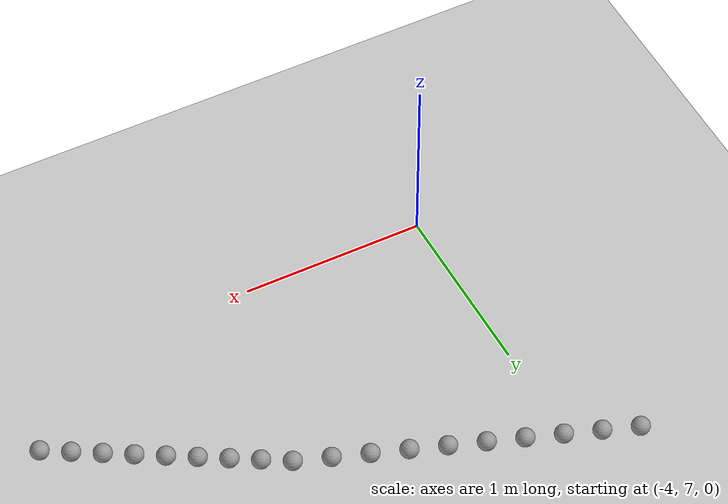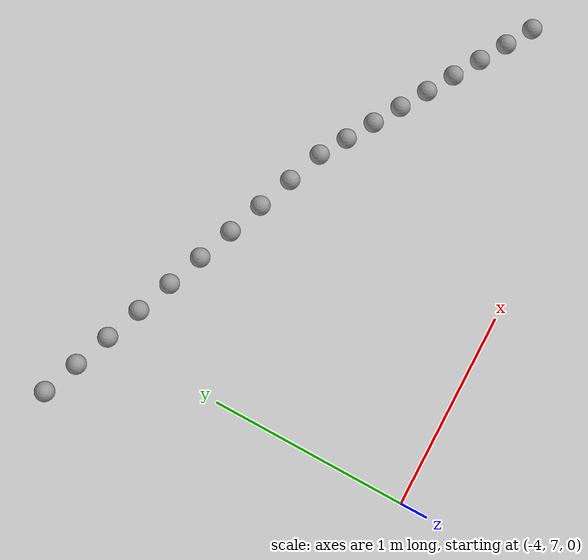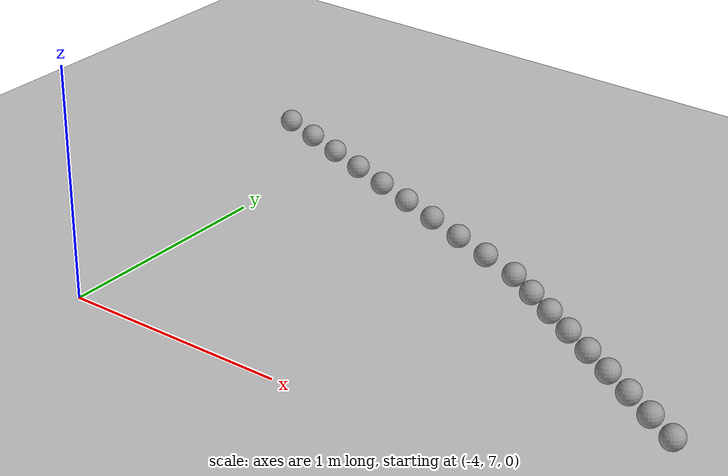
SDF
<sdf version="1.6">
 <world name="default">
  <model name="ground_plane">
   <static>1</static>
   <link name="link">
    <collision name="collision">
     <geometry><plane><normal>0 0 1</normal><size>100 100</size></plane></geometry>
     <surface><friction><ode><mu>100</mu><mu2>50</mu2></ode></friction></surface>
    </collision>
    <visual name="visual">
     <cast_shadows>0</cast_shadows>
     <geometry><plane><normal>0 0 1</normal><size>100 100</size></plane></geometry>
     <material>
      <script><uri>file://media/materials/scripts/gazebo.material</uri><name>Gazebo/Grey</name></script>
     </material>
    </visual>
   </link>
  </model>
  <model name="unit_sphere_0_42">
   <pose>-1.594000 7.500000 0.050000 0 -0 0</pose>
   <link name="link">
    <inertial>
     <mass>1</mass>
     <inertia><ixx>0.1</ixx><ixy>0</ixy><ixz>0</ixz><iyy>0.1</iyy><iyz>0</iyz><izz>0.1</izz></inertia>
    </inertial>
    <collision name="collision"><geometry><sphere><radius>0.050000</radius></sphere></geometry></collision>
    <visual name="visual">
     <geometry><sphere><radius>0.050000</radius></sphere></geometry>
     <material>
      <script><name>Gazebo/Grey</name><uri>file://media/materials/scripts/gazebo.material</uri></script>
     </material>
    </visual>
   </link>
  </model>
  <model name="unit_sphere_0_43">
   <pose>-1.731000 7.580000 0.050000 0 -0 0</pose>
   <link name="link">
    <inertial>
     <mass>1</mass>
     <inertia><ixx>0.1</ixx><ixy>0</ixy><ixz>0</ixz><iyy>0.1</iyy><iyz>0</iyz><izz>0.1</izz></inertia>
    </inertial>
    <collision name="collision"><geometry><sphere><radius>0.050000</radius></sphere></geometry></collision>
    <visual name="visual">
     <geometry><sphere><radius>0.050000</radius></sphere></geometry>
     <material>
      <script><name>Gazebo/Grey</name><uri>file://media/materials/scripts/gazebo.material</uri></script>
     </material>
    </visual>
   </link>
  </model>
  <model name="unit_sphere_0_44">
   <pose>-1.868000 7.660000 0.050000 0 -0 0</pose>
   <link name="link">
    <inertial>
     <mass>1</mass>
     <inertia><ixx>0.1</ixx><ixy>0</ixy><ixz>0</ixz><iyy>0.1</iyy><iyz>0</iyz><izz>0.1</izz></inertia>
    </inertial>
    <collision name="collision"><geometry><sphere><radius>0.050000</radius></sphere></geometry></collision>
    <visual name="visual">
     <geometry><sphere><radius>0.050000</radius></sphere></geometry>
     <material>
      <script><name>Gazebo/Grey</name><uri>file://media/materials/scripts/gazebo.material</uri></script>
     </material>
    </visual>
   </link>
  </model>
  <model name="unit_sphere_0_45">
   <pose>-2.005000 7.740000 0.050000 0 -0 0</pose>
   <link name="link">
    <inertial>
     <mass>1</mass>
     <inertia><ixx>0.1</ixx><ixy>0</ixy><ixz>0</ixz><iyy>0.1</iyy><iyz>0</iyz><izz>0.1</izz></inertia>
    </inertial>
    <collision name="collision"><geometry><sphere><radius>0.050000</radius></sphere></geometry></collision>
    <visual name="visual">
     <geometry><sphere><radius>0.050000</radius></sphere></geometry>
     <material>
      <script><name>Gazebo/Grey</name><uri>file://media/materials/scripts/gazebo.material</uri></script>
     </material>
    </visual>
   </link>
  </model>
  <model name="unit_sphere_0_46">
   <pose>-2.142000 7.820000 0.050000 0 -0 0</pose>
   <link name="link">
    <inertial>
     <mass>1</mass>
     <inertia><ixx>0.1</ixx><ixy>0</ixy><ixz>0</ixz><iyy>0.1</iyy><iyz>0</iyz><izz>0.1</izz></inertia>
    </inertial>
    <collision name="collision"><geometry><sphere><radius>0.050000</radius></sphere></geometry></collision>
    <visual name="visual">
     <geometry><sphere><radius>0.050000</radius></sphere></geometry>
     <material>
      <script><name>Gazebo/Grey</name><uri>file://media/materials/scripts/gazebo.material</uri></script>
     </material>
    </visual>
   </link>
  </model>
  <model name="unit_sphere_0_47">
   <pose>-2.279000 7.900000 0.050000 0 -0 0</pose>
   <link name="link">
    <inertial>
     <mass>1</mass>
     <inertia><ixx>0.1</ixx><ixy>0</ixy><ixz>0</ixz><iyy>0.1</iyy><iyz>0</iyz><izz>0.1</izz></inertia>
    </inertial>
    <collision name="collision"><geometry><sphere><radius>0.050000</radius></sphere></geometry></collision>
    <visual name="visual">
     <geometry><sphere><radius>0.050000</radius></sphere></geometry>
     <material>
      <script><name>Gazebo/Grey</name><uri>file://media/materials/scripts/gazebo.material</uri></script>
     </material>
    </visual>
   </link>
  </model>
  <model name="unit_sphere_0_48">
   <pose>-2.416000 7.980000 0.050000 0 -0 0</pose>
   <link name="link">
    <inertial>
     <mass>1</mass>
     <inertia><ixx>0.1</ixx><ixy>0</ixy><ixz>0</ixz><iyy>0.1</iyy><iyz>0</iyz><izz>0.1</izz></inertia>
    </inertial>
    <collision name="collision"><geometry><sphere><radius>0.050000</radius></sphere></geometry></collision>
    <visual name="visual">
     <geometry><sphere><radius>0.050000</radius></sphere></geometry>
     <material>
      <script><name>Gazebo/Grey</name><uri>file://media/materials/scripts/gazebo.material</uri></script>
     </material>
    </visual>
   </link>
  </model>
  <model name="unit_sphere_0_49">
   <pose>-2.553000 8.060000 0.050000 0 -0 0</pose>
   <link name="link">
    <inertial>
     <mass>1</mass>
     <inertia><ixx>0.1</ixx><ixy>0</ixy><ixz>0</ixz><iyy>0.1</iyy><iyz>0</iyz><izz>0.1</izz></inertia>
    </inertial>
    <collision name="collision"><geometry><sphere><radius>0.050000</radius></sphere></geometry></collision>
    <visual name="visual">
     <geometry><sphere><radius>0.050000</radius></sphere></geometry>
     <material>
      <script><name>Gazebo/Grey</name><uri>file://media/materials/scripts/gazebo.material</uri></script>
     </material>
    </visual>
   </link>
  </model>
  <model name="unit_sphere_0_50">
   <pose>-2.690000 8.140000 0.050000 0 -0 0</pose>
   <link name="link">
    <inertial>
     <mass>1</mass>
     <inertia><ixx>0.1</ixx><ixy>0</ixy><ixz>0</ixz><iyy>0.1</iyy><iyz>0</iyz><izz>0.1</izz></inertia>
    </inertial>
    <collision name="collision"><geometry><sphere><radius>0.050000</radius></sphere></geometry></collision>
    <visual name="visual">
     <geometry><sphere><radius>0.050000</radius></sphere></geometry>
     <material>
      <script><name>Gazebo/Grey</name><uri>file://media/materials/scripts/gazebo.material</uri></script>
     </material>
    </visual>
   </link>
  </model>
  <model name="unit_sphere_0_51">
   <pose>-2.874000 8.207000 0.050000 0 -0 0</pose>
   <link name="link">
    <inertial>
     <mass>1</mass>
     <inertia><ixx>0.1</ixx><ixy>0</ixy><ixz>0</ixz><iyy>0.1</iyy><iyz>0</iyz><izz>0.1</izz></inertia>
    </inertial>
    <collision name="collision"><geometry><sphere><radius>0.050000</radius></sphere></geometry></collision>
    <visual name="visual">
     <geometry><sphere><radius>0.050000</radius></sphere></geometry>
     <material>
      <script><name>Gazebo/Grey</name><uri>file://media/materials/scripts/gazebo.material</uri></script>
     </material>
    </visual>
   </link>
  </model>
  <model name="unit_sphere_0_52">
   <pose>-3.058000 8.274000 0.050000 0 -0 0</pose>
   <link name="link">
    <inertial>
     <mass>1</mass>
     <inertia><ixx>0.1</ixx><ixy>0</ixy><ixz>0</ixz><iyy>0.1</iyy><iyz>0</iyz><izz>0.1</izz></inertia>
    </inertial>
    <collision name="collision"><geometry><sphere><radius>0.050000</radius></sphere></geometry></collision>
    <visual name="visual">
     <geometry><sphere><radius>0.050000</radius></sphere></geometry>
     <material>
      <script><name>Gazebo/Grey</name><uri>file://media/materials/scripts/gazebo.material</uri></script>
     </material>
    </visual>
   </link>
  </model>
  <model name="unit_sphere_0_53">
   <pose>-3.242000 8.341000 0.050000 0 -0 0</pose>
   <link name="link">
    <inertial>
     <mass>1</mass>
     <inertia><ixx>0.1</ixx><ixy>0</ixy><ixz>0</ixz><iyy>0.1</iyy><iyz>0</iyz><izz>0.1</izz></inertia>
    </inertial>
    <collision name="collision"><geometry><sphere><radius>0.050000</radius></sphere></geometry></collision>
    <visual name="visual">
     <geometry><sphere><radius>0.050000</radius></sphere></geometry>
     <material>
      <script><name>Gazebo/Grey</name><uri>file://media/materials/scripts/gazebo.material</uri></script>
     </material>
    </visual>
   </link>
  </model>
  <model name="unit_sphere_0_54">
   <pose>-3.426000 8.408000 0.050000 0 -0 0</pose>
   <link name="link">
    <inertial>
     <mass>1</mass>
     <inertia><ixx>0.1</ixx><ixy>0</ixy><ixz>0</ixz><iyy>0.1</iyy><iyz>0</iyz><izz>0.1</izz></inertia>
    </inertial>
    <collision name="collision"><geometry><sphere><radius>0.050000</radius></sphere></geometry></collision>
    <visual name="visual">
     <geometry><sphere><radius>0.050000</radius></sphere></geometry>
     <material>
      <script><name>Gazebo/Grey</name><uri>file://media/materials/scripts/gazebo.material</uri></script>
     </material>
    </visual>
   </link>
  </model>
  <model name="unit_sphere_0_55">
   <pose>-3.610000 8.475000 0.050000 0 -0 0</pose>
   <link name="link">
    <inertial>
     <mass>1</mass>
     <inertia><ixx>0.1</ixx><ixy>0</ixy><ixz>0</ixz><iyy>0.1</iyy><iyz>0</iyz><izz>0.1</izz></inertia>
    </inertial>
    <collision name="collision"><geometry><sphere><radius>0.050000</radius></sphere></geometry></collision>
    <visual name="visual">
     <geometry><sphere><radius>0.050000</radius></sphere></geometry>
     <material>
      <script><name>Gazebo/Grey</name><uri>file://media/materials/scripts/gazebo.material</uri></script>
     </material>
    </visual>
   </link>
  </model>
  <model name="unit_sphere_0_56">
   <pose>-3.794000 8.542000 0.050000 0 -0 0</pose>
   <link name="link">
    <inertial>
     <mass>1</mass>
     <inertia><ixx>0.1</ixx><ixy>0</ixy><ixz>0</ixz><iyy>0.1</iyy><iyz>0</iyz><izz>0.1</izz></inertia>
    </inertial>
    <collision name="collision"><geometry><sphere><radius>0.050000</radius></sphere></geometry></collision>
    <visual name="visual">
     <geometry><sphere><radius>0.050000</radius></sphere></geometry>
     <material>
      <script><name>Gazebo/Grey</name><uri>file://media/materials/scripts/gazebo.material</uri></script>
     </material>
    </visual>
   </link>
  </model>
  <model name="unit_sphere_0_57">
   <pose>-3.978000 8.609000 0.050000 0 -0 0</pose>
   <link name="link">
    <inertial>
     <mass>1</mass>
     <inertia><ixx>0.1</ixx><ixy>0</ixy><ixz>0</ixz><iyy>0.1</iyy><iyz>0</iyz><izz>0.1</izz></inertia>
    </inertial>
    <collision name="collision"><geometry><sphere><radius>0.050000</radius></sphere></geometry></collision>
    <visual name="visual">
     <geometry><sphere><radius>0.050000</radius></sphere></geometry>
     <material>
      <script><name>Gazebo/Grey</name><uri>file://media/materials/scripts/gazebo.material</uri></script>
     </material>
    </visual>
   </link>
  </model>
  <model name="unit_sphere_0_58">
   <pose>-4.162000 8.676000 0.050000 0 -0 0</pose>
   <link name="link">
    <inertial>
     <mass>1</mass>
     <inertia><ixx>0.1</ixx><ixy>0</ixy><ixz>0</ixz><iyy>0.1</iyy><iyz>0</iyz><izz>0.1</izz></inertia>
    </inertial>
    <collision name="collision"><geometry><sphere><radius>0.050000</radius></sphere></geometry></collision>
    <visual name="visual">
     <geometry><sphere><radius>0.050000</radius></sphere></geometry>
     <material>
      <script><name>Gazebo/Grey</name><uri>file://media/materials/scripts/gazebo.material</uri></script>
     </material>
    </visual>
   </link>
  </model>
  <model name="unit_sphere_0_59">
   <pose>-4.346000 8.743000 0.050000 0 -0 0</pose>
   <link name="link">
    <inertial>
     <mass>1</mass>
     <inertia><ixx>0.1</ixx><ixy>0</ixy><ixz>0</ixz><iyy>0.1</iyy><iyz>0</iyz><izz>0.1</izz></inertia>
    </inertial>
    <collision name="collision"><geometry><sphere><radius>0.050000</radius></sphere></geometry></collision>
    <visual name="visual">
     <geometry><sphere><radius>0.050000</radius></sphere></geometry>
     <material>
      <script><name>Gazebo/Grey</name><uri>file://media/materials/scripts/gazebo.material</uri></script>
     </material>
    </visual>
   </link>
  </model>
 </world>
</sdf>
